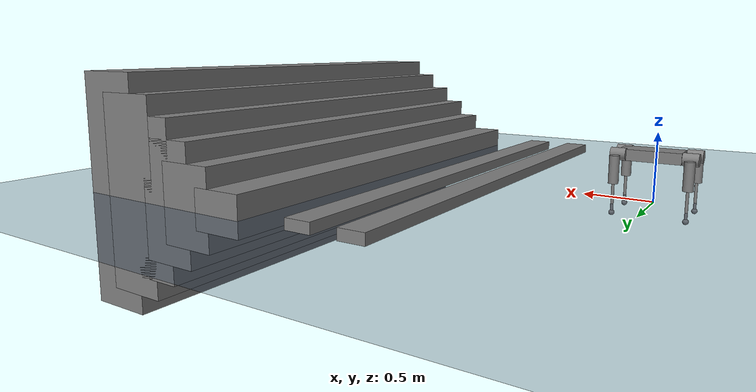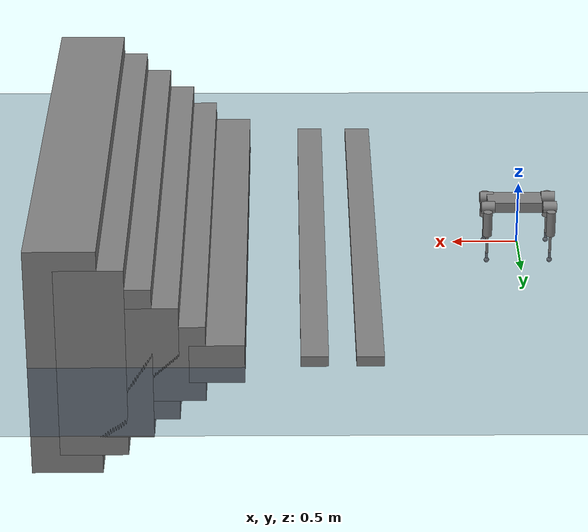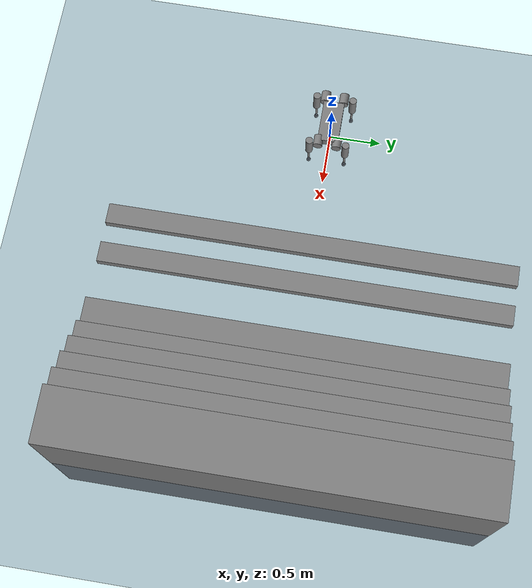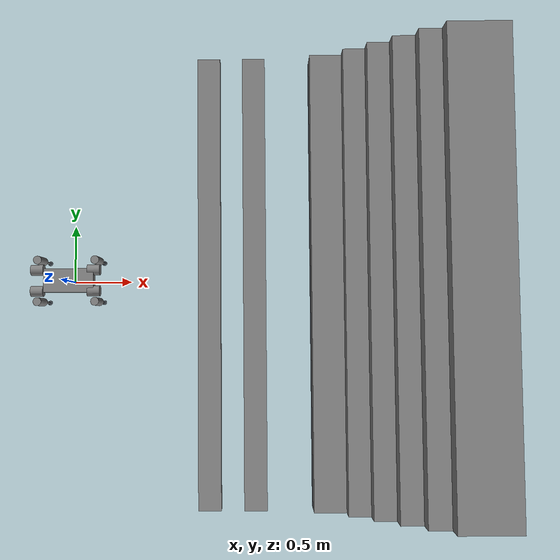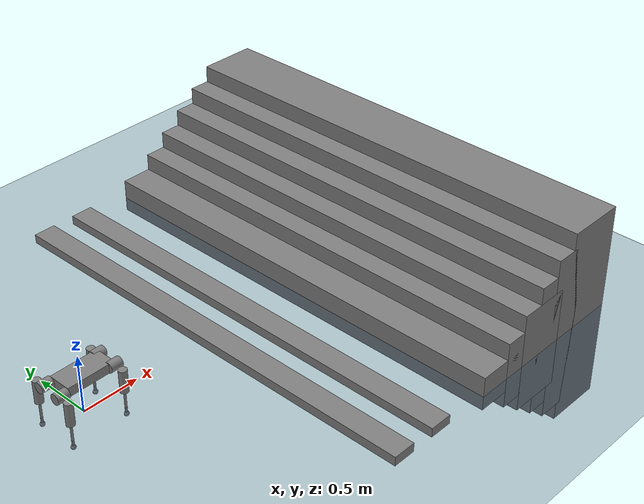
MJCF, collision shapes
<mujoco model="my_robot scene">
  <include file="my_robot.xml"/>

  <statistic center="0 0 0.1" extent="0.8"/>

  <visual>
    <headlight diffuse="0.6 0.6 0.6" ambient="0.3 0.3 0.3" specular="0 0 0"/>
    <rgba haze="0.15 0.25 0.35 1"/>
  </visual>

  <asset>
    <texture type="skybox" builtin="gradient" rgb1="0.3 0.5 0.7" rgb2="0 0 0" width="512" height="3072"/>
    <texture type="2d" name="groundplane" builtin="checker" mark="edge" rgb1="0.2 0.3 0.4" rgb2="0.1 0.2 0.3"
      markrgb="0.8 0.8 0.8" width="300" height="300"/>
    <material name="groundplane" texture="groundplane" texuniform="true" texrepeat="5 5" reflectance="0.2"/>
  </asset>

  <worldbody>
    <light pos="0 0 1.5" dir="0 0 -1" directional="true"/>
    <geom name="floor" size="0 0 0.05" type="plane" material="groundplane"/>

    <geom pos="1.2 0 0.04" type="box"  size="0.1 2 0.04" quat="1.0 0 0 0"/>
    <geom pos="1.6 0 0.04" type="box"  size="0.1 2 0.04" quat="1.0 0 0 0"/>

    <geom pos="2.3 0 0.02" type="box"  size="0.2 2 0.15" quat="1.0 0 0 0"/>
    <geom pos="2.6 0 0.02" type="box"  size="0.22 2 0.3" quat="1.0 0 0 0"/>
    <geom pos="2.8 0 0.02" type="box"  size="0.23 2 0.45" quat="1.0 0 0 0"/>
    <geom pos="3 0 0.02" type="box"  size="0.24 2 0.6" quat="1.0 0 0 0"/>
    <geom pos="3.2 0 0.02" type="box"  size="0.25 2 0.75" quat="1.0 0 0 0"/>
    <geom pos="3.4 0 0.02" type="box"  size="0.26 2 0.9" quat="1.0 0 0 0"/>
  </worldbody>

</mujoco>

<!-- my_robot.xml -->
<mujoco model="my_robot">
  <compiler angle="radian" eulerseq="xyz"/>

  <default>
    <geom friction="0.8 0.02 0.01" condim="3"/>
  </default>

  <contact>
    <exclude body1="base_link" body2="FL_thigh_link"/>
    <exclude body1="base_link" body2="FL_calf_link"/>
    <exclude body1="base_link" body2="FR_thigh_link"/>
    <exclude body1="base_link" body2="FR_calf_link"/>
    <exclude body1="base_link" body2="RL_thigh_link"/>
    <exclude body1="base_link" body2="RL_calf_link"/>
    <exclude body1="base_link" body2="RR_thigh_link"/>
    <exclude body1="base_link" body2="RR_calf_link"/>
  </contact>

  <asset>
    <material name="body_gray" rgba="0.75294 0.75294 0.75294 1"/>
    <mesh name="base_link_mesh" file="../meshes/base_link.STL"/>
    <mesh name="FR_hip_link_mesh" file="../meshes/FR_hip_link.STL"/>
    <mesh name="FL_hip_link_mesh" file="../meshes/FR_hip_link.STL" scale="1 -1 1"/>
    <mesh name="RL_hip_link_mesh" file="../meshes/FR_hip_link.STL" scale="-1 -1 1"/>
    <mesh name="RR_hip_link_mesh" file="../meshes/FR_hip_link.STL" scale="-1 1 1"/>
    <mesh name="FR_thigh_link_mesh" file="../meshes/FR_thigh_link.STL"/>
    <mesh name="FL_thigh_link_mesh" file="../meshes/FR_thigh_link.STL" scale="1 -1 1"/>
    <mesh name="FR_calf_link_mesh" file="../meshes/FR_calf_link.STL"/>
    <mesh name="FR_foot_link_mesh" file="../meshes/FR_foot_link.STL"/>
  </asset>

  <worldbody>
    <body name="base_link" pos="0 0 0.35">
      <freejoint name="floating_base"/>
      <inertial pos="0.031204 0.000033 -0.008905" mass="4.494850"
        fullinertia="0.034929 0.143028 0.162305 -0.000071 -0.006069 -0.000010"/>
      <site name="imu" pos="0 0 0" size="0.01" rgba="0.1 0.4 1 1"/>
      <geom name="base_link_visual" type="mesh" mesh="base_link_mesh" material="body_gray"
        contype="0" conaffinity="0" group="1"/>
      <geom name="base_link_collision" type="box" pos="0.03 0 -0.01" size="0.21 0.10 0.04" group="3"/>

      <body name="FL_hip_link" pos="0.1866 0.09 -0.0076048">
        <inertial pos="0.052135 0.001001 0.000099" mass="0.598856"
          fullinertia="0.000371 0.000750 0.000492 0.0 0.0 0.0"/>
        <joint name="FL_hip_joint" type="hinge" pos="0 0 0" axis="1 0 0" limited="true"
          range="-1.57079632679 1.57079632679" damping="0.1" armature="0.01" frictionloss="0.2"/>
        <geom name="FL_hip_visual" type="mesh" mesh="FL_hip_link_mesh" material="body_gray"
          contype="0" conaffinity="0" group="1"/>
        <geom name="FL_hip_collision" type="cylinder" pos="0.052 0 0" euler="0 1.5708 0"
          size="0.045 0.0525" group="3"/>

        <body name="FL_thigh_link" pos="0.05774 0.0206 0">
          <inertial pos="-0.017225 0.044465 -0.017434" mass="1.046195"
            fullinertia="0.0037 0.0037 0.0022 0.0 0.0 0.0"/>
          <joint name="FL_thigh_joint" type="hinge" pos="0 0 0" axis="0 1 0" limited="true"
            range="-2.35619449019 2.35619449019" damping="0.1" armature="0.01" frictionloss="0.2"/>
          <geom name="FL_thigh_visual" type="mesh" mesh="FL_thigh_link_mesh" material="body_gray"
            euler="0 -0.61 0" contype="0" conaffinity="0" group="1"/>
          <geom name="FL_thigh_collision" type="cylinder" pos="0 0.0665 -0.10"
            size="0.035 0.10" group="3"/>

          <body name="FL_calf_link" pos="0 0.0665 -0.20">
            <inertial pos="0 0 -0.105" mass="0.093"
              fullinertia="0.000351 0.000351 0.000019 0.0 0.0 0.0"/>
            <joint name="FL_calf_joint" type="hinge" pos="0 0 0" axis="0 1 0" limited="true"
              range="-2.67035375555 -0.5" damping="0.1" armature="0.01" frictionloss="0.2"/>
            <geom name="FL_calf_visual" type="mesh" mesh="FR_calf_link_mesh" material="body_gray"
              euler="0 0.6 0" contype="0" conaffinity="0" group="1"/>
            <geom name="FL_calf_collision" type="cylinder" pos="0 0 -0.105"
              size="0.010 0.105" group="3"/>

            <body name="FL_foot_link" pos="0 0 -0.21" euler="0 0.6 0">
              <inertial pos="0 0 0" mass="0.024244"
                fullinertia="0.000007 0.000007 0.000006 0.0 0.0 0.0"/>
              <geom name="FL_foot_visual" type="mesh" mesh="FR_foot_link_mesh" material="body_gray"
                contype="0" conaffinity="0" group="1"/>
              <geom name="FL_foot_collision" type="sphere" size="0.02" group="3" friction="1.0" condim="3"/>
            </body>
          </body>
        </body>
      </body>

      <body name="FR_hip_link" pos="0.1866 -0.09 -0.0076048">
        <inertial pos="0.052135 -0.001001 0.000099" mass="0.598856"
          fullinertia="0.000371 0.000750 0.000492 0.0 0.0 0.0"/>
        <joint name="FR_hip_joint" type="hinge" pos="0 0 0" axis="1 0 0" limited="true"
          range="-1.57079632679 1.57079632679" damping="0.1" armature="0.01" frictionloss="0.2"/>
        <geom name="FR_hip_visual" type="mesh" mesh="FR_hip_link_mesh" material="body_gray"
          contype="0" conaffinity="0" group="1"/>
        <geom name="FR_hip_collision" type="cylinder" pos="0.052 0 0" euler="0 1.5708 0"
          size="0.045 0.0525" group="3"/>

        <body name="FR_thigh_link" pos="0.05774 -0.0206 0">
          <inertial pos="-0.017225 -0.044465 -0.017434" mass="1.046195"
            fullinertia="0.0037 0.0037 0.0022 0.0 0.0 0.0"/>
          <joint name="FR_thigh_joint" type="hinge" pos="0 0 0" axis="0 1 0" limited="true"
            range="-2.35619449019 2.35619449019" damping="0.1" armature="0.01" frictionloss="0.2"/>
          <geom name="FR_thigh_visual" type="mesh" mesh="FR_thigh_link_mesh" material="body_gray"
            euler="0 -0.61 0" contype="0" conaffinity="0" group="1"/>
          <geom name="FR_thigh_collision" type="cylinder" pos="0 -0.0665 -0.10"
            size="0.035 0.10" group="3"/>

          <body name="FR_calf_link" pos="0 -0.0665 -0.20">
            <inertial pos="0 0 -0.105" mass="0.093"
              fullinertia="0.000351 0.000351 0.000019 0.0 0.0 0.0"/>
            <joint name="FR_calf_joint" type="hinge" pos="0 0 0" axis="0 1 0" limited="true"
              range="-2.67035375555 -0.5" damping="0.1" armature="0.01" frictionloss="0.2"/>
            <geom name="FR_calf_visual" type="mesh" mesh="FR_calf_link_mesh" material="body_gray"
              euler="0 0.6 0" contype="0" conaffinity="0" group="1"/>
            <geom name="FR_calf_collision" type="cylinder" pos="0 0 -0.105"
              size="0.010 0.105" group="3"/>

            <body name="FR_foot_link" pos="0 0 -0.21" euler="0 0.6 0">
              <inertial pos="0 0 0" mass="0.024244"
                fullinertia="0.000007 0.000007 0.000006 0.0 0.0 0.0"/>
              <geom name="FR_foot_visual" type="mesh" mesh="FR_foot_link_mesh" material="body_gray"
                contype="0" conaffinity="0" group="1"/>
              <geom name="FR_foot_collision" type="sphere" size="0.02" group="3" friction="1.0" condim="3"/>
            </body>
          </body>
        </body>
      </body>

      <body name="RL_hip_link" pos="-0.1866 0.09 -0.0076048">
        <inertial pos="-0.052135 0.001001 0.000099" mass="0.598856"
          fullinertia="0.000371 0.000750 0.000492 0.0 0.0 0.0"/>
        <joint name="RL_hip_joint" type="hinge" pos="0 0 0" axis="1 0 0" limited="true"
          range="-1.57079632679 1.57079632679" damping="0.1" armature="0.01" frictionloss="0.2"/>
        <geom name="RL_hip_visual" type="mesh" mesh="RL_hip_link_mesh" material="body_gray"
          contype="0" conaffinity="0" group="1"/>
        <geom name="RL_hip_collision" type="cylinder" pos="-0.052 0 0" euler="0 -1.5708 0"
          size="0.045 0.0525" group="3"/>

        <body name="RL_thigh_link" pos="-0.05774 0.0206 0">
          <inertial pos="-0.017225 0.044465 -0.017434" mass="1.046195"
            fullinertia="0.0037 0.0037 0.0022 0.0 0.0 0.0"/>
          <joint name="RL_thigh_joint" type="hinge" pos="0 0 0" axis="0 1 0" limited="true"
            range="-2.35619449019 2.35619449019" damping="0.1" armature="0.01" frictionloss="0.2"/>
          <geom name="RL_thigh_visual" type="mesh" mesh="FL_thigh_link_mesh" material="body_gray"
            euler="0 -0.61 0" contype="0" conaffinity="0" group="1"/>
          <geom name="RL_thigh_collision" type="cylinder" pos="0 0.0665 -0.10"
            size="0.035 0.10" group="3"/>

          <body name="RL_calf_link" pos="0 0.0665 -0.20">
            <inertial pos="0 0 -0.105" mass="0.093"
              fullinertia="0.000351 0.000351 0.000019 0.0 0.0 0.0"/>
            <joint name="RL_calf_joint" type="hinge" pos="0 0 0" axis="0 1 0" limited="true"
              range="-2.67035375555 -0.5" damping="0.1" armature="0.01" frictionloss="0.2"/>
            <geom name="RL_calf_visual" type="mesh" mesh="FR_calf_link_mesh" material="body_gray"
              euler="0 0.6 0" contype="0" conaffinity="0" group="1"/>
            <geom name="RL_calf_collision" type="cylinder" pos="0 0 -0.105"
              size="0.010 0.105" group="3"/>

            <body name="RL_foot_link" pos="0 0 -0.21" euler="0 0.6 0">
              <inertial pos="0 0 0" mass="0.024244"
                fullinertia="0.000007 0.000007 0.000006 0.0 0.0 0.0"/>
              <geom name="RL_foot_visual" type="mesh" mesh="FR_foot_link_mesh" material="body_gray"
                contype="0" conaffinity="0" group="1"/>
              <geom name="RL_foot_collision" type="sphere" size="0.02" group="3" friction="1.0" condim="3"/>
            </body>
          </body>
        </body>
      </body>

      <body name="RR_hip_link" pos="-0.1866 -0.09 -0.0076048">
        <inertial pos="-0.052135 -0.001001 0.000099" mass="0.598856"
          fullinertia="0.000371 0.000750 0.000492 0.0 0.0 0.0"/>
        <joint name="RR_hip_joint" type="hinge" pos="0 0 0" axis="1 0 0" limited="true"
          range="-1.57079632679 1.57079632679" damping="0.1" armature="0.01" frictionloss="0.2"/>
        <geom name="RR_hip_visual" type="mesh" mesh="RR_hip_link_mesh" material="body_gray"
          contype="0" conaffinity="0" group="1"/>
        <geom name="RR_hip_collision" type="cylinder" pos="-0.052 0 0" euler="0 -1.5708 0"
          size="0.045 0.0525" group="3"/>

        <body name="RR_thigh_link" pos="-0.05774 -0.0206 0">
          <inertial pos="-0.017225 -0.044465 -0.017434" mass="1.046195"
            fullinertia="0.0037 0.0037 0.0022 0.0 0.0 0.0"/>
          <joint name="RR_thigh_joint" type="hinge" pos="0 0 0" axis="0 1 0" limited="true"
            range="-2.35619449019 2.35619449019" damping="0.1" armature="0.01" frictionloss="0.2"/>
          <geom name="RR_thigh_visual" type="mesh" mesh="FR_thigh_link_mesh" material="body_gray"
            euler="0 -0.61 0" contype="0" conaffinity="0" group="1"/>
          <geom name="RR_thigh_collision" type="cylinder" pos="0 -0.0665 -0.10"
            size="0.035 0.10" group="3"/>

          <body name="RR_calf_link" pos="0 -0.0665 -0.20">
            <inertial pos="0 0 -0.105" mass="0.093"
              fullinertia="0.000351 0.000351 0.000019 0.0 0.0 0.0"/>
            <joint name="RR_calf_joint" type="hinge" pos="0 0 0" axis="0 1 0" limited="true"
              range="-2.67035375555 -0.5" damping="0.1" armature="0.01" frictionloss="0.2"/>
            <geom name="RR_calf_visual" type="mesh" mesh="FR_calf_link_mesh" material="body_gray"
              euler="0 0.6 0" contype="0" conaffinity="0" group="1"/>
            <geom name="RR_calf_collision" type="cylinder" pos="0 0 -0.105"
              size="0.010 0.105" group="3"/>

            <body name="RR_foot_link" pos="0 0 -0.21" euler="0 0.6 0">
              <inertial pos="0 0 0" mass="0.024244"
                fullinertia="0.000007 0.000007 0.000006 0.0 0.0 0.0"/>
              <geom name="RR_foot_visual" type="mesh" mesh="FR_foot_link_mesh" material="body_gray"
                contype="0" conaffinity="0" group="1"/>
              <geom name="RR_foot_collision" type="sphere" size="0.02" group="3" friction="1.0" condim="3"/>
            </body>
          </body>
        </body>
      </body>
    </body>
  </worldbody>

  <actuator>
    <motor name="FL_hip" joint="FL_hip_joint" ctrllimited="true" ctrlrange="-23.7 23.7" forcelimited="true" forcerange="-23.7 23.7"/>
    <motor name="FL_thigh" joint="FL_thigh_joint" ctrllimited="true" ctrlrange="-23.7 23.7" forcelimited="true" forcerange="-23.7 23.7"/>
    <motor name="FL_calf" joint="FL_calf_joint" ctrllimited="true" ctrlrange="-23.7 23.7" forcelimited="true" forcerange="-23.7 23.7"/>
    <motor name="FR_hip" joint="FR_hip_joint" ctrllimited="true" ctrlrange="-23.7 23.7" forcelimited="true" forcerange="-23.7 23.7"/>
    <motor name="FR_thigh" joint="FR_thigh_joint" ctrllimited="true" ctrlrange="-23.7 23.7" forcelimited="true" forcerange="-23.7 23.7"/>
    <motor name="FR_calf" joint="FR_calf_joint" ctrllimited="true" ctrlrange="-23.7 23.7" forcelimited="true" forcerange="-23.7 23.7"/>
    <motor name="RL_hip" joint="RL_hip_joint" ctrllimited="true" ctrlrange="-23.7 23.7" forcelimited="true" forcerange="-23.7 23.7"/>
    <motor name="RL_thigh" joint="RL_thigh_joint" ctrllimited="true" ctrlrange="-23.7 23.7" forcelimited="true" forcerange="-23.7 23.7"/>
    <motor name="RL_calf" joint="RL_calf_joint" ctrllimited="true" ctrlrange="-23.7 23.7" forcelimited="true" forcerange="-23.7 23.7"/>
    <motor name="RR_hip" joint="RR_hip_joint" ctrllimited="true" ctrlrange="-23.7 23.7" forcelimited="true" forcerange="-23.7 23.7"/>
    <motor name="RR_thigh" joint="RR_thigh_joint" ctrllimited="true" ctrlrange="-23.7 23.7" forcelimited="true" forcerange="-23.7 23.7"/>
    <motor name="RR_calf" joint="RR_calf_joint" ctrllimited="true" ctrlrange="-23.7 23.7" forcelimited="true" forcerange="-23.7 23.7"/>
  </actuator>

  <sensor>
    <jointpos name="FL_hip_joint_pos" joint="FL_hip_joint"/>
    <jointpos name="FL_thigh_joint_pos" joint="FL_thigh_joint"/>
    <jointpos name="FL_calf_joint_pos" joint="FL_calf_joint"/>
    <jointpos name="FR_hip_joint_pos" joint="FR_hip_joint"/>
    <jointpos name="FR_thigh_joint_pos" joint="FR_thigh_joint"/>
    <jointpos name="FR_calf_joint_pos" joint="FR_calf_joint"/>
    <jointpos name="RL_hip_joint_pos" joint="RL_hip_joint"/>
    <jointpos name="RL_thigh_joint_pos" joint="RL_thigh_joint"/>
    <jointpos name="RL_calf_joint_pos" joint="RL_calf_joint"/>
    <jointpos name="RR_hip_joint_pos" joint="RR_hip_joint"/>
    <jointpos name="RR_thigh_joint_pos" joint="RR_thigh_joint"/>
    <jointpos name="RR_calf_joint_pos" joint="RR_calf_joint"/>

    <jointvel name="FL_hip_joint_vel" joint="FL_hip_joint"/>
    <jointvel name="FL_thigh_joint_vel" joint="FL_thigh_joint"/>
    <jointvel name="FL_calf_joint_vel" joint="FL_calf_joint"/>
    <jointvel name="FR_hip_joint_vel" joint="FR_hip_joint"/>
    <jointvel name="FR_thigh_joint_vel" joint="FR_thigh_joint"/>
    <jointvel name="FR_calf_joint_vel" joint="FR_calf_joint"/>
    <jointvel name="RL_hip_joint_vel" joint="RL_hip_joint"/>
    <jointvel name="RL_thigh_joint_vel" joint="RL_thigh_joint"/>
    <jointvel name="RL_calf_joint_vel" joint="RL_calf_joint"/>
    <jointvel name="RR_hip_joint_vel" joint="RR_hip_joint"/>
    <jointvel name="RR_thigh_joint_vel" joint="RR_thigh_joint"/>
    <jointvel name="RR_calf_joint_vel" joint="RR_calf_joint"/>

    <actuatorfrc name="FL_hip_joint_torque" actuator="FL_hip"/>
    <actuatorfrc name="FL_thigh_joint_torque" actuator="FL_thigh"/>
    <actuatorfrc name="FL_calf_joint_torque" actuator="FL_calf"/>
    <actuatorfrc name="FR_hip_joint_torque" actuator="FR_hip"/>
    <actuatorfrc name="FR_thigh_joint_torque" actuator="FR_thigh"/>
    <actuatorfrc name="FR_calf_joint_torque" actuator="FR_calf"/>
    <actuatorfrc name="RL_hip_joint_torque" actuator="RL_hip"/>
    <actuatorfrc name="RL_thigh_joint_torque" actuator="RL_thigh"/>
    <actuatorfrc name="RL_calf_joint_torque" actuator="RL_calf"/>
    <actuatorfrc name="RR_hip_joint_torque" actuator="RR_hip"/>
    <actuatorfrc name="RR_thigh_joint_torque" actuator="RR_thigh"/>
    <actuatorfrc name="RR_calf_joint_torque" actuator="RR_calf"/>

    <framequat name="orientation" objtype="site" noise="0.001" objname="imu"/>
    <framepos name="position" objtype="site" noise="0.001" objname="imu"/>
    <gyro name="angular-velocity" site="imu" noise="0.005" cutoff="34.9"/>
    <velocimeter name="linear-velocity" site="imu" noise="0.001" cutoff="30"/>
    <accelerometer name="linear-acceleration" site="imu" noise="0.005" cutoff="157"/>
    <magnetometer name="magnetometer" site="imu"/>
  </sensor>
</mujoco>
